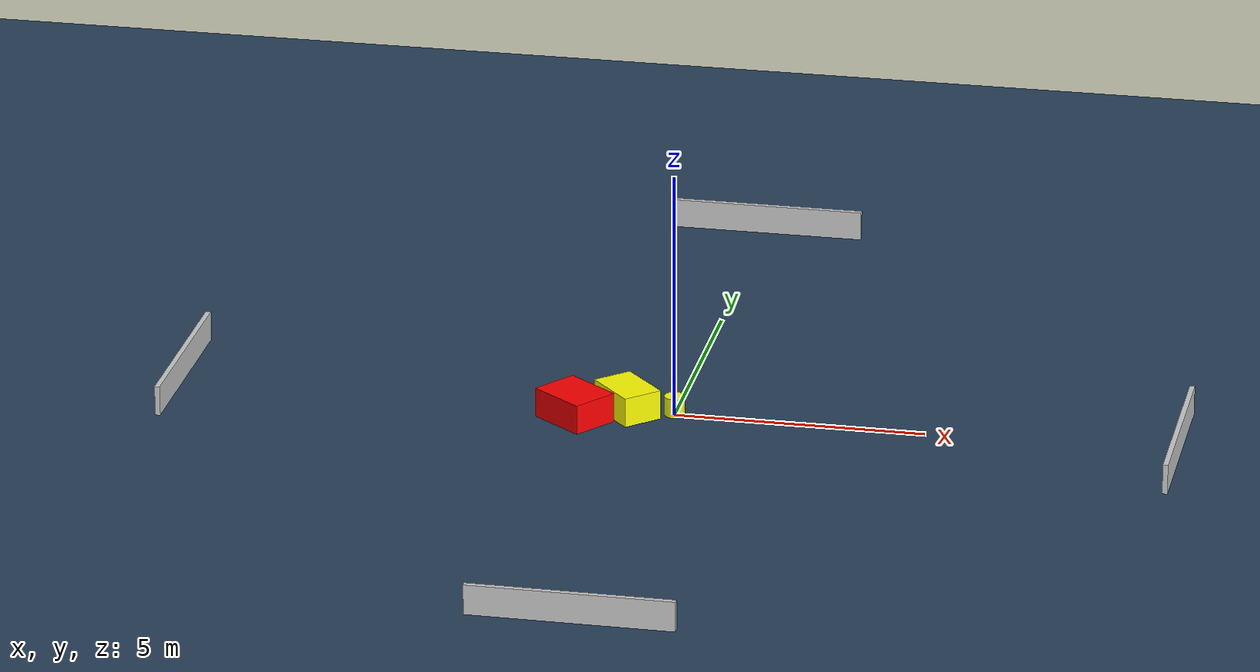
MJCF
<?xml version="1.0" ?>
<mujoco model="generated_environment">
  <option timestep="0.01" integrator="RK4" cone="elliptic"/>
  <default>
    <geom density="1"/>
  </default>
  <asset>
    <texture builtin="gradient" height="3072" name="skybox" rgb1="0.3 0.5 0.7" rgb2="0 0 0" type="skybox" width="512"/>
    <texture builtin="checker" height="300" name="groundplane" rgb1="0.2 0.3 0.4" rgb2="0.1 0.2 0.3" type="2d" width="300"/>
    <material name="groundplane" reflectance="0.2" texrepeat="5 5" texture="groundplane"/>
  </asset>
  <worldbody>
    <light dir="0 0 -1" directional="true" pos="0 0 1.5"/>
    <geom condim="3" friction="0.5 0.005 0.001" material="groundplane" name="floor" pos="0 0 0" size="0 0 0.05" type="plane"/>
    <body name="walls">
      <geom name="wall_1" condim="4" pos="-10.0 0.0 0.3" rgba="0.800000011920929 0.800000011920929 0.800000011920929 1.0" size="0.05 2.0 0.3" type="box"/>
      <geom name="wall_2" condim="4" pos="10.0 0.0 0.3" rgba="0.800000011920929 0.800000011920929 0.800000011920929 1.0" size="0.05 2.0 0.3" type="box"/>
      <geom name="wall_3" condim="4" pos="0.0 -10.0 0.3" rgba="0.800000011920929 0.800000011920929 0.800000011920929 1.0" size="2.0 0.05 0.3" type="box"/>
      <geom name="wall_4" condim="4" pos="0.0 10.0 0.3" rgba="0.800000011920929 0.800000011920929 0.800000011920929 1.0" size="2.0 0.05 0.3" type="box"/>
    </body>
    <body name="robot">
      <joint name="joint_x" type="slide" pos="0 0 0" axis="1 0 0"/>
      <joint name="joint_y" type="slide" pos="0 0 0" axis="0 1 0"/>
      <geom name="robot" type="cylinder" pos="0.0 0.0 0.2" size="0.2 0.2 0.0" mass="5.0" friction="1.0 0.005 0.0001" condim="4" rgba="1.0 1.0 0.0 1.0"/>
    </body>
    <body name="obstacle_1_movable">
      <geom name="obstacle_1_movable" condim="4" pos="-0.9265072161816639 -0.10811081134196857 0.3" euler="0 0 42.81665158889672" friction="0.0 0.005 0.001" rgba="1.0 1.0 0.0 1.0" size="0.4099525115373684 0.5836113879129398 0.3" type="box" mass="0.1"/>
      <joint type="free"/>
    </body>
    <body name="obstacle_2_static">
      <geom name="obstacle_2_static" condim="4" pos="-1.889674056656282 -0.5897682240162068 0.3" euler="0 0 323.0414524073589" friction="0.0 0.005 0.001" rgba="1.0 0.0 0.0 1.0" size="0.6181591893022382 0.4864887211028048 0.3" type="box"/>
    </body>
  </worldbody>
  <actuator>
    <motor name="actuator_x" joint="joint_x" gear="1" ctrlrange="-1 1"/>
    <motor name="actuator_y" joint="joint_y" gear="1" ctrlrange="-1 1"/>
  </actuator>
</mujoco>
